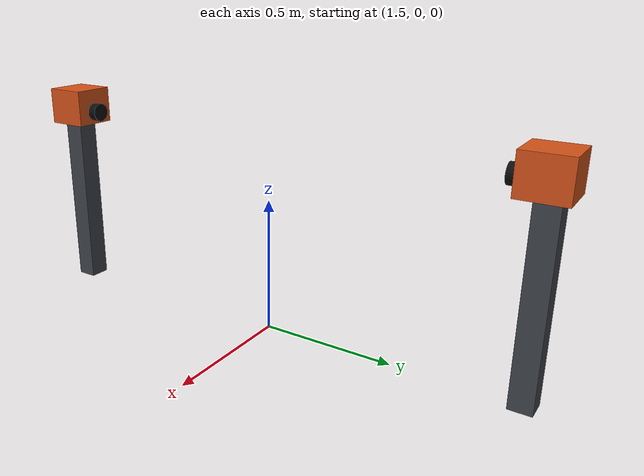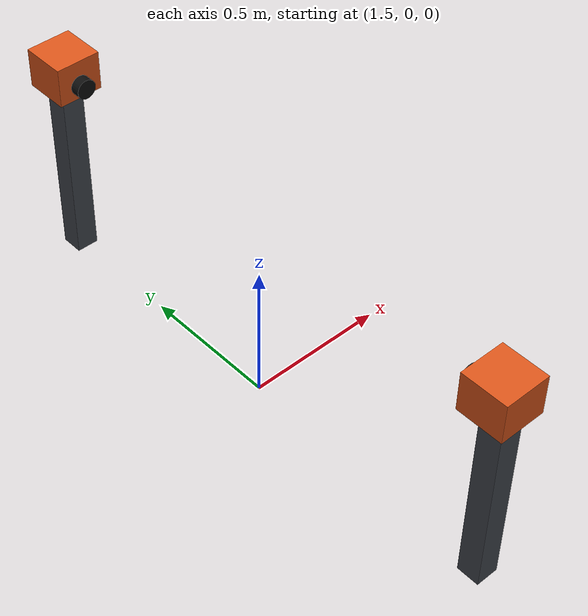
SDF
<?xml version="1.0"?>
<sdf version="1.8">
  <model name="camera_side_props">
    <static>true</static>
    <link name="link">
      <!-- -y head: post, housing at the sensor pose, lens facing the belt -->
      <visual name="post_neg_y">
        <pose>1.5 -0.95 0.34 0 0 0</pose>
        <geometry><box><size>0.08 0.08 0.68</size></box></geometry>
        <material><ambient>0.25 0.27 0.30 1</ambient><diffuse>0.25 0.27 0.30 1</diffuse></material>
      </visual>
      <visual name="housing_neg_y">
        <pose>1.5 -0.94 0.75 0 0 0</pose>
        <geometry><box><size>0.16 0.16 0.14</size></box></geometry>
        <material><ambient>0.85 0.33 0.10 1</ambient><diffuse>0.85 0.33 0.10 1</diffuse></material>
      </visual>
      <visual name="lens_neg_y">
        <pose>1.5 -0.85 0.73 1.5708 0 0</pose>
        <geometry><cylinder><radius>0.035</radius><length>0.05</length></cylinder></geometry>
        <material><ambient>0.05 0.05 0.05 1</ambient><diffuse>0.05 0.05 0.05 1</diffuse></material>
      </visual>

      <!-- +y head -->
      <visual name="post_pos_y">
        <pose>1.5 0.95 0.34 0 0 0</pose>
        <geometry><box><size>0.08 0.08 0.68</size></box></geometry>
        <material><ambient>0.25 0.27 0.30 1</ambient><diffuse>0.25 0.27 0.30 1</diffuse></material>
      </visual>
      <visual name="housing_pos_y">
        <pose>1.5 0.94 0.75 0 0 0</pose>
        <geometry><box><size>0.16 0.16 0.14</size></box></geometry>
        <material><ambient>0.85 0.33 0.10 1</ambient><diffuse>0.85 0.33 0.10 1</diffuse></material>
      </visual>
      <visual name="lens_pos_y">
        <pose>1.5 0.85 0.73 1.5708 0 0</pose>
        <geometry><cylinder><radius>0.035</radius><length>0.05</length></cylinder></geometry>
        <material><ambient>0.05 0.05 0.05 1</ambient><diffuse>0.05 0.05 0.05 1</diffuse></material>
      </visual>
    </link>
  </model>
</sdf>
